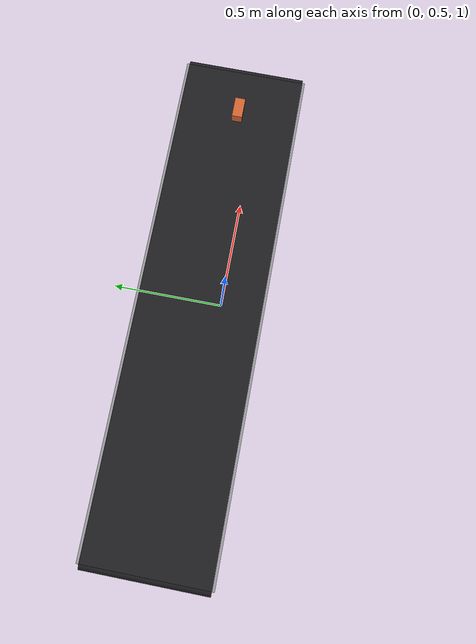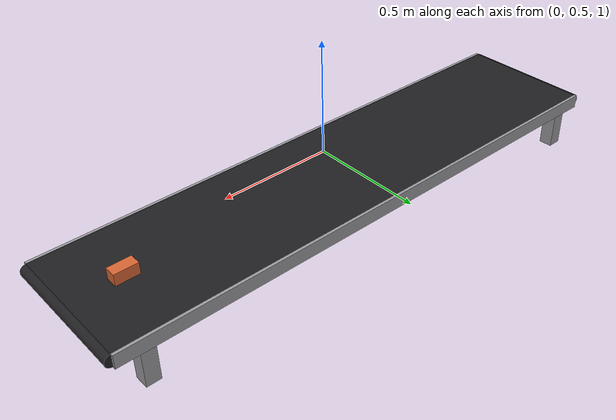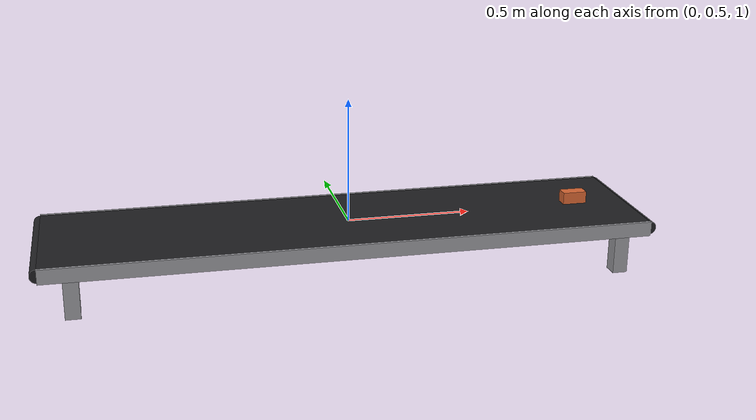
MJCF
<mujoco model="conveyor">
  <compiler angle="radian" autolimits="true"/>

  <asset>
    <material name="belt"     rgba="0.12 0.12 0.13 1" specular="0.3" shininess="0.2"/>
    <material name="frame"    rgba="0.60 0.60 0.62 1" specular="0.4" shininess="0.3"/>
    <material name="pkg"      rgba="0.85 0.40 0.20 1"/>
  </asset>

  <worldbody>
    <!-- Conveyor static parts: feet, visible belt, side rails, and the end rollers
         (roller_a drive at -x, roller_b idler at +x; spun about y by the plugin). -->
    <body name="conveyor_frame" pos="0 0.6 0">
      <geom name="conv_leg_1" type="box" size="0.03 0.03 0.0775" pos="1.1 0.27 0.8375" material="frame"/>
      <geom name="conv_leg_2" type="box" size="0.03 0.03 0.0775" pos="-1.1 0.27 0.8375" material="frame"/>
      <geom name="conv_leg_3" type="box" size="0.03 0.03 0.0775" pos="1.1 -0.27 0.8375" material="frame"/>
      <geom name="conv_leg_4" type="box" size="0.03 0.03 0.0775" pos="-1.1 -0.27 0.8375" material="frame"/>
      <geom name="belt_visual" type="box" size="1.221 0.29 0.0275" pos="0 0 0.9425" material="belt" contype="0" conaffinity="0"/>
      <geom name="rail_near" type="box" size="1.221 0.006 0.03" pos="0 -0.296 0.9425" material="frame" contype="0" conaffinity="0"/>
      <geom name="rail_far"  type="box" size="1.221 0.006 0.03" pos="0  0.296 0.9425" material="frame" contype="0" conaffinity="0"/>
      <body name="roller_a" pos="-1.221 0 0.9425">
        <joint name="roller_a_spin" type="hinge" axis="0 -1 0"/>
        <geom name="roller_a_geom" type="cylinder" size="0.0275 0.29" quat="1 1 0 0" material="belt"
              friction="1.0 0.005 0.0001"/>
      </body>
      <body name="roller_b" pos="1.221 0 0.9425">
        <joint name="roller_b_spin" type="hinge" axis="0 -1 0"/>
        <geom name="roller_b_geom" type="cylinder" size="0.0275 0.29" quat="1 1 0 0" material="belt"
              friction="1.0 0.005 0.0001"/>
      </body>
    </body>

    <body name="belt" pos="0 0.6 0.9425">
      <joint name="belt_x" type="slide" axis="-1 0 0" limited="false" damping="0"/>
      <inertial pos="0 0 0" mass="10.0" diaginertia="1.0 1.0 1.0"/>
      <geom name="belt_surface" type="box" size="1.25 0.29 0.0275" group="3"
            contype="0" conaffinity="0" friction="1.0 0.005 0.0001"/>
    </body>

    <!-- Free-floating package on the belt (0.1 x 0.05 x 0.05 m, 1 kg); pose set on reset. -->
    <body name="package" pos="1.0 0.6 0.996">
      <freejoint name="package_free"/>
      <geom name="package_geom" type="box" size="0.05 0.025 0.025" material="pkg"
            mass="1.0" friction="1.0 0.005 0.0001"/>
    </body>
  </worldbody>

  <contact>
    <!-- Tunable belt<->package sliding friction: [tan1 tan2 torsional roll1 roll2]. -->
    <pair name="belt_package" geom1="belt_surface" geom2="package_geom"
          friction="0.6 0.6 0.005 0.0001 0.0001"/>
    <!-- Both the slab and rollers are velocity-forced; don't let them collide as the slab wraps. -->
    <exclude body1="belt" body2="roller_a"/>
    <exclude body1="belt" body2="roller_b"/>
  </contact>
</mujoco>
